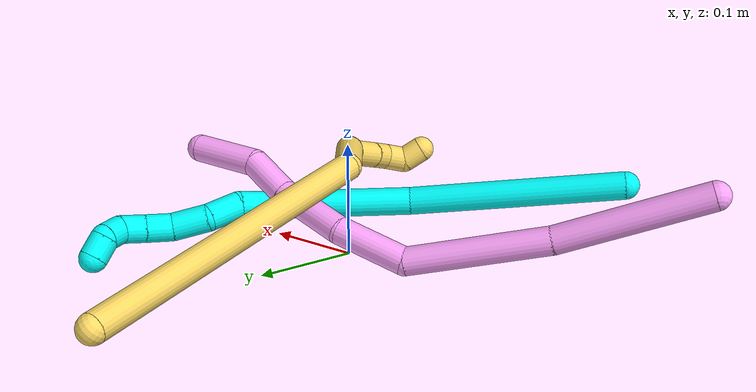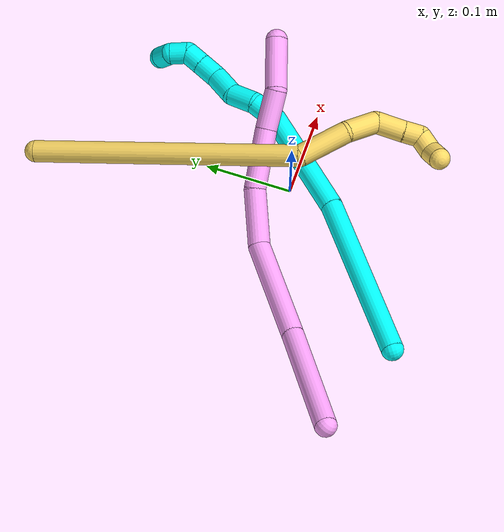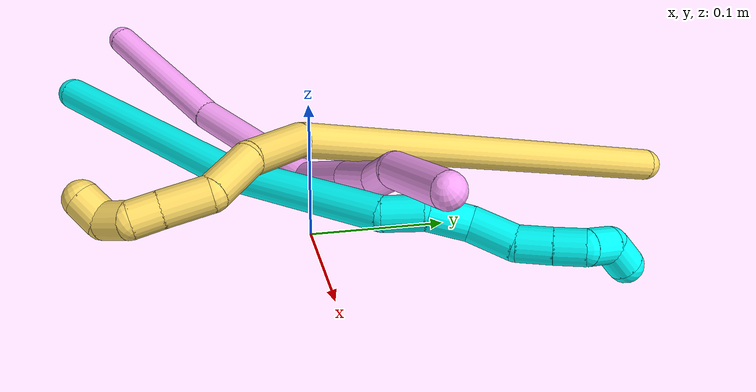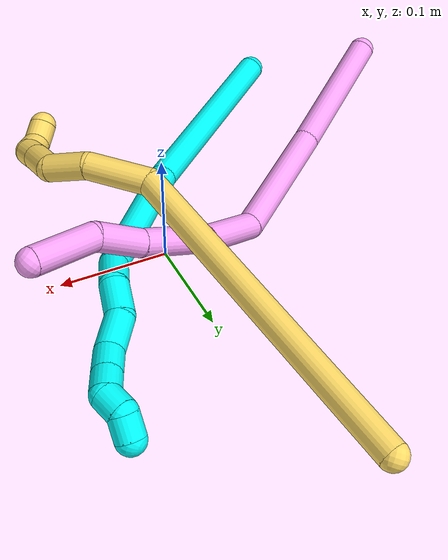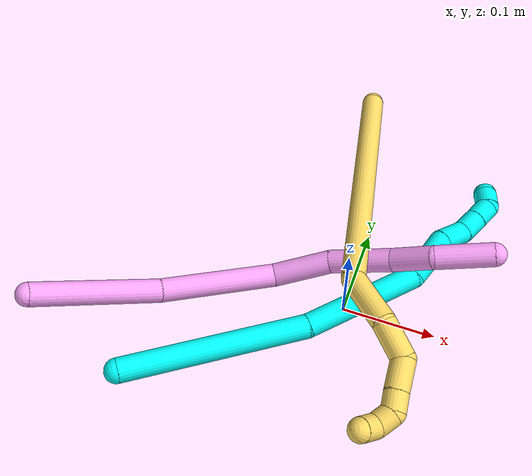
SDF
<sdf version="1.7">
 <world name="default">
  <model name="3">
   <static>0</static>
   <link name="3">
    <collision name="collision-cylinder-e_1_1_4">
     <pose>-0.079002 0.055107 0.008149 -1.42399 -0.956636 0.841457</pose>
     <geometry><cylinder><radius>0.0125</radius><length>0.193334</length></cylinder></geometry>
     <surface>
      <friction><ode><mu>1.16</mu><mu2>1.16</mu2><slip1>0</slip1><slip2>0</slip2></ode></friction>
      <contact><ode><kp>1e+06</kp><kd>1</kd><max_vel>0</max_vel><min_depth>0.001</min_depth></ode></contact>
     </surface>
    </collision>
    <visual name="visual-cylinder-e_1_1_4">
     <pose>-0.079002 0.055107 0.008149 -1.42399 -0.956636 0.841457</pose>
     <geometry><cylinder><radius>0.0125</radius><length>0.193334</length></cylinder></geometry>
     <material><ambient>0.003922 1 0.996078 1</ambient></material>
    </visual>
    <collision name="collision-cylinder-e_2_4_5">
     <pose>-0.204493 0.151308 0.032095 -1.20377 -0.812613 0.574719</pose>
     <geometry><cylinder><radius>0.0125</radius><length>0.128055</length></cylinder></geometry>
     <surface>
      <friction><ode><mu>1.16</mu><mu2>1.16</mu2><slip1>0</slip1><slip2>0</slip2></ode></friction>
      <contact><ode><kp>1e+06</kp><kd>1</kd><max_vel>0</max_vel><min_depth>0.001</min_depth></ode></contact>
     </surface>
    </collision>
    <visual name="visual-cylinder-e_2_4_5">
     <pose>-0.204493 0.151308 0.032095 -1.20377 -0.812613 0.574719</pose>
     <geometry><cylinder><radius>0.0125</radius><length>0.128055</length></cylinder></geometry>
     <material><ambient>0.003922 1 0.996078 1</ambient></material>
    </visual>
    <collision name="collision-cylinder-e_3_5_6">
     <pose>-0.258143 0.202241 0.056267 -0.865766 -0.506078 0.237861</pose>
     <geometry><cylinder><radius>0.0125</radius><length>0.029544</length></cylinder></geometry>
     <surface>
      <friction><ode><mu>1.16</mu><mu2>1.16</mu2><slip1>0</slip1><slip2>0</slip2></ode></friction>
      <contact><ode><kp>1e+06</kp><kd>1</kd><max_vel>0</max_vel><min_depth>0.001</min_depth></ode></contact>
     </surface>
    </collision>
    <visual name="visual-cylinder-e_3_5_6">
     <pose>-0.258143 0.202241 0.056267 -0.865766 -0.506078 0.237861</pose>
     <geometry><cylinder><radius>0.0125</radius><length>0.029544</length></cylinder></geometry>
     <material><ambient>0.003922 1 0.996078 1</ambient></material>
    </visual>
    <collision name="collision-cylinder-e_4_6_7">
     <pose>-0.274776 0.217377 0.075417 -0.456743 -0.667899 0.160929</pose>
     <geometry><cylinder><radius>0.0125</radius><length>0.030588</length></cylinder></geometry>
     <surface>
      <friction><ode><mu>1.16</mu><mu2>1.16</mu2><slip1>0</slip1><slip2>0</slip2></ode></friction>
      <contact><ode><kp>1e+06</kp><kd>1</kd><max_vel>0</max_vel><min_depth>0.001</min_depth></ode></contact>
     </surface>
    </collision>
    <visual name="visual-cylinder-e_4_6_7">
     <pose>-0.274776 0.217377 0.075417 -0.456743 -0.667899 0.160929</pose>
     <geometry><cylinder><radius>0.0125</radius><length>0.030588</length></cylinder></geometry>
     <material><ambient>0.003922 1 0.996078 1</ambient></material>
    </visual>
    <collision name="collision-cylinder-e_5_7_8">
     <pose>-0.297657 0.230152 0.091913 -0.917964 -0.958626 0.502821</pose>
     <geometry><cylinder><radius>0.0125</radius><length>0.032767</length></cylinder></geometry>
     <surface>
      <friction><ode><mu>1.16</mu><mu2>1.16</mu2><slip1>0</slip1><slip2>0</slip2></ode></friction>
      <contact><ode><kp>1e+06</kp><kd>1</kd><max_vel>0</max_vel><min_depth>0.001</min_depth></ode></contact>
     </surface>
    </collision>
    <visual name="visual-cylinder-e_5_7_8">
     <pose>-0.297657 0.230152 0.091913 -0.917964 -0.958626 0.502821</pose>
     <geometry><cylinder><radius>0.0125</radius><length>0.032767</length></cylinder></geometry>
     <material><ambient>0.003922 1 0.996078 1</ambient></material>
    </visual>
    <collision name="collision-cylinder-e_6_8_9">
     <pose>-0.317959 0.245363 0.103821 -0.895744 -0.60806 0.299226</pose>
     <geometry><cylinder><radius>0.0125</radius><length>0.024135</length></cylinder></geometry>
     <surface>
      <friction><ode><mu>1.16</mu><mu2>1.16</mu2><slip1>0</slip1><slip2>0</slip2></ode></friction>
      <contact><ode><kp>1e+06</kp><kd>1</kd><max_vel>0</max_vel><min_depth>0.001</min_depth></ode></contact>
     </surface>
    </collision>
    <visual name="visual-cylinder-e_6_8_9">
     <pose>-0.317959 0.245363 0.103821 -0.895744 -0.60806 0.299226</pose>
     <geometry><cylinder><radius>0.0125</radius><length>0.024135</length></cylinder></geometry>
     <material><ambient>0.003922 1 0.996078 1</ambient></material>
    </visual>
    <collision name="collision-cylinder-e_7_9_10">
     <pose>-0.330698 0.260081 0.115586 -0.897279 -0.579163 0.284917</pose>
     <geometry><cylinder><radius>0.0125</radius><length>0.02136</length></cylinder></geometry>
     <surface>
      <friction><ode><mu>1.16</mu><mu2>1.16</mu2><slip1>0</slip1><slip2>0</slip2></ode></friction>
      <contact><ode><kp>1e+06</kp><kd>1</kd><max_vel>0</max_vel><min_depth>0.001</min_depth></ode></contact>
     </surface>
    </collision>
    <visual name="visual-cylinder-e_7_9_10">
     <pose>-0.330698 0.260081 0.115586 -0.897279 -0.579163 0.284917</pose>
     <geometry><cylinder><radius>0.0125</radius><length>0.02136</length></cylinder></geometry>
     <material><ambient>0.003922 1 0.996078 1</ambient></material>
    </visual>
    <collision name="collision-cylinder-e_8_10_11">
     <pose>-0.338534 0.269038 0.130795 -0.201753 -0.199678 0.020278</pose>
     <geometry><cylinder><radius>0.0125</radius><length>0.020065</length></cylinder></geometry>
     <surface>
      <friction><ode><mu>1.16</mu><mu2>1.16</mu2><slip1>0</slip1><slip2>0</slip2></ode></friction>
      <contact><ode><kp>1e+06</kp><kd>1</kd><max_vel>0</max_vel><min_depth>0.001</min_depth></ode></contact>
     </surface>
    </collision>
    <visual name="visual-cylinder-e_8_10_11">
     <pose>-0.338534 0.269038 0.130795 -0.201753 -0.199678 0.020278</pose>
     <geometry><cylinder><radius>0.0125</radius><length>0.020065</length></cylinder></geometry>
     <material><ambient>0.003922 1 0.996078 1</ambient></material>
    </visual>
    <collision name="collision-cylinder-e_9_11_2">
     <pose>-0.347475 0.267962 0.147056 0.430932 -0.761338 -0.174728</pose>
     <geometry><cylinder><radius>0.0125</radius><length>0.020152</length></cylinder></geometry>
     <surface>
      <friction><ode><mu>1.16</mu><mu2>1.16</mu2><slip1>0</slip1><slip2>0</slip2></ode></friction>
      <contact><ode><kp>1e+06</kp><kd>1</kd><max_vel>0</max_vel><min_depth>0.001</min_depth></ode></contact>
     </surface>
    </collision>
    <visual name="visual-cylinder-e_9_11_2">
     <pose>-0.347475 0.267962 0.147056 0.430932 -0.761338 -0.174728</pose>
     <geometry><cylinder><radius>0.0125</radius><length>0.020152</length></cylinder></geometry>
     <material><ambient>0.003922 1 0.996078 1</ambient></material>
    </visual>
    <collision name="collision-sphere-2">
     <pose>-0.354426 0.264915 0.153683 0 -0 0</pose>
     <geometry><sphere><radius>0.0125</radius></sphere></geometry>
     <surface>
      <friction><ode><mu>1.16</mu><mu2>1.16</mu2><slip1>0</slip1><slip2>0</slip2></ode></friction>
      <contact><ode><kp>1e+06</kp><kd>1</kd><max_vel>0</max_vel><min_depth>0.001</min_depth></ode></contact>
     </surface>
    </collision>
    <visual name="visual-sphere-2">
     <pose>-0.354426 0.264915 0.153683 0 -0 0</pose>
     <geometry><sphere><radius>0.0125</radius></sphere></geometry>
     <material><ambient>0.003922 1 0.996078 1</ambient></material>
    </visual>
    <collision name="collision-sphere-11">
     <pose>-0.340524 0.271009 0.140428 0 -0 0</pose>
     <geometry><sphere><radius>0.0125</radius></sphere></geometry>
     <surface>
      <friction><ode><mu>1.16</mu><mu2>1.16</mu2><slip1>0</slip1><slip2>0</slip2></ode></friction>
      <contact><ode><kp>1e+06</kp><kd>1</kd><max_vel>0</max_vel><min_depth>0.001</min_depth></ode></contact>
     </surface>
    </collision>
    <visual name="visual-sphere-11">
     <pose>-0.340524 0.271009 0.140428 0 -0 0</pose>
     <geometry><sphere><radius>0.0125</radius></sphere></geometry>
     <material><ambient>0.003922 1 0.996078 1</ambient></material>
    </visual>
    <collision name="collision-sphere-10">
     <pose>-0.336544 0.267068 0.121161 0 -0 0</pose>
     <geometry><sphere><radius>0.0125</radius></sphere></geometry>
     <surface>
      <friction><ode><mu>1.16</mu><mu2>1.16</mu2><slip1>0</slip1><slip2>0</slip2></ode></friction>
      <contact><ode><kp>1e+06</kp><kd>1</kd><max_vel>0</max_vel><min_depth>0.001</min_depth></ode></contact>
     </surface>
    </collision>
    <visual name="visual-sphere-10">
     <pose>-0.336544 0.267068 0.121161 0 -0 0</pose>
     <geometry><sphere><radius>0.0125</radius></sphere></geometry>
     <material><ambient>0.003922 1 0.996078 1</ambient></material>
    </visual>
    <collision name="collision-sphere-9">
     <pose>-0.324853 0.253095 0.110011 0 -0 0</pose>
     <geometry><sphere><radius>0.0125</radius></sphere></geometry>
     <surface>
      <friction><ode><mu>1.16</mu><mu2>1.16</mu2><slip1>0</slip1><slip2>0</slip2></ode></friction>
      <contact><ode><kp>1e+06</kp><kd>1</kd><max_vel>0</max_vel><min_depth>0.001</min_depth></ode></contact>
     </surface>
    </collision>
    <visual name="visual-sphere-9">
     <pose>-0.324853 0.253095 0.110011 0 -0 0</pose>
     <geometry><sphere><radius>0.0125</radius></sphere></geometry>
     <material><ambient>0.003922 1 0.996078 1</ambient></material>
    </visual>
    <collision name="collision-sphere-4">
     <pose>-0.158003 0.110215 0.016297 0 -0 0</pose>
     <geometry><sphere><radius>0.0125</radius></sphere></geometry>
     <surface>
      <friction><ode><mu>1.16</mu><mu2>1.16</mu2><slip1>0</slip1><slip2>0</slip2></ode></friction>
      <contact><ode><kp>1e+06</kp><kd>1</kd><max_vel>0</max_vel><min_depth>0.001</min_depth></ode></contact>
     </surface>
    </collision>
    <visual name="visual-sphere-4">
     <pose>-0.158003 0.110215 0.016297 0 -0 0</pose>
     <geometry><sphere><radius>0.0125</radius></sphere></geometry>
     <material><ambient>0.003922 1 0.996078 1</ambient></material>
    </visual>
    <collision name="collision-sphere-1">
     <geometry><sphere><radius>0.0125</radius></sphere></geometry>
     <surface>
      <friction><ode><mu>1.16</mu><mu2>1.16</mu2><slip1>0</slip1><slip2>0</slip2></ode></friction>
      <contact><ode><kp>1e+06</kp><kd>1</kd><max_vel>0</max_vel><min_depth>0.001</min_depth></ode></contact>
     </surface>
    </collision>
    <visual name="visual-sphere-1">
     <geometry><sphere><radius>0.0125</radius></sphere></geometry>
     <material><ambient>0.003922 1 0.996078 1</ambient></material>
    </visual>
    <collision name="collision-sphere-8">
     <pose>-0.311065 0.23763 0.097632 0 -0 0</pose>
     <geometry><sphere><radius>0.0125</radius></sphere></geometry>
     <surface>
      <friction><ode><mu>1.16</mu><mu2>1.16</mu2><slip1>0</slip1><slip2>0</slip2></ode></friction>
      <contact><ode><kp>1e+06</kp><kd>1</kd><max_vel>0</max_vel><min_depth>0.001</min_depth></ode></contact>
     </surface>
    </collision>
    <visual name="visual-sphere-8">
     <pose>-0.311065 0.23763 0.097632 0 -0 0</pose>
     <geometry><sphere><radius>0.0125</radius></sphere></geometry>
     <material><ambient>0.003922 1 0.996078 1</ambient></material>
    </visual>
    <collision name="collision-sphere-5">
     <pose>-0.250982 0.192401 0.047894 0 -0 0</pose>
     <geometry><sphere><radius>0.0125</radius></sphere></geometry>
     <surface>
      <friction><ode><mu>1.16</mu><mu2>1.16</mu2><slip1>0</slip1><slip2>0</slip2></ode></friction>
      <contact><ode><kp>1e+06</kp><kd>1</kd><max_vel>0</max_vel><min_depth>0.001</min_depth></ode></contact>
     </surface>
    </collision>
    <visual name="visual-sphere-5">
     <pose>-0.250982 0.192401 0.047894 0 -0 0</pose>
     <geometry><sphere><radius>0.0125</radius></sphere></geometry>
     <material><ambient>0.003922 1 0.996078 1</ambient></material>
    </visual>
    <collision name="collision-sphere-6">
     <pose>-0.265304 0.212081 0.06464 0 -0 0</pose>
     <geometry><sphere><radius>0.0125</radius></sphere></geometry>
     <surface>
      <friction><ode><mu>1.16</mu><mu2>1.16</mu2><slip1>0</slip1><slip2>0</slip2></ode></friction>
      <contact><ode><kp>1e+06</kp><kd>1</kd><max_vel>0</max_vel><min_depth>0.001</min_depth></ode></contact>
     </surface>
    </collision>
    <visual name="visual-sphere-6">
     <pose>-0.265304 0.212081 0.06464 0 -0 0</pose>
     <geometry><sphere><radius>0.0125</radius></sphere></geometry>
     <material><ambient>0.003922 1 0.996078 1</ambient></material>
    </visual>
    <collision name="collision-sphere-7">
     <pose>-0.284248 0.222673 0.086194 0 -0 0</pose>
     <geometry><sphere><radius>0.0125</radius></sphere></geometry>
     <surface>
      <friction><ode><mu>1.16</mu><mu2>1.16</mu2><slip1>0</slip1><slip2>0</slip2></ode></friction>
      <contact><ode><kp>1e+06</kp><kd>1</kd><max_vel>0</max_vel><min_depth>0.001</min_depth></ode></contact>
     </surface>
    </collision>
    <visual name="visual-sphere-7">
     <pose>-0.284248 0.222673 0.086194 0 -0 0</pose>
     <geometry><sphere><radius>0.0125</radius></sphere></geometry>
     <material><ambient>0.003922 1 0.996078 1</ambient></material>
    </visual>
    <inertial>
     <pose>-0.191555 0.144942 0.046458 0 -0 0</pose>
     <mass>0.5</mass>
     <inertia>
      <ixx>0.000656</ixx>
      <ixy>0</ixy>
      <ixz>0</ixz>
      <iyy>0.000915</iyy>
      <iyz>0</iyz>
      <izz>0.000181</izz>
     </inertia>
    </inertial>
   </link>
   <pose>-0.175905 -0.17248 0.064328 1.79492 -0.689686 -2.69953</pose>
  </model>
  <model name="4">
   <static>0</static>
   <link name="4">
    <collision name="collision-cylinder-e_1_1_4">
     <pose>0.03559 0.057219 -0.002226 -1.60968 0.556096 -0.576967</pose>
     <geometry><cylinder><radius>0.0125</radius><length>0.134841</length></cylinder></geometry>
     <surface>
      <friction><ode><mu>1.16</mu><mu2>1.16</mu2><slip1>0</slip1><slip2>0</slip2></ode></friction>
      <contact><ode><kp>1e+06</kp><kd>1</kd><max_vel>0</max_vel><min_depth>0.001</min_depth></ode></contact>
     </surface>
    </collision>
    <visual name="visual-cylinder-e_1_1_4">
     <pose>0.03559 0.057219 -0.002226 -1.60968 0.556096 -0.576967</pose>
     <geometry><cylinder><radius>0.0125</radius><length>0.134841</length></cylinder></geometry>
     <material><ambient>1 0.65098 0.996078 1</ambient></material>
    </visual>
    <collision name="collision-cylinder-e_2_4_5">
     <pose>0.110459 0.163329 -0.011151 -1.70697 0.672282 -0.761946</pose>
     <geometry><cylinder><radius>0.0125</radius><length>0.126146</length></cylinder></geometry>
     <surface>
      <friction><ode><mu>1.16</mu><mu2>1.16</mu2><slip1>0</slip1><slip2>0</slip2></ode></friction>
      <contact><ode><kp>1e+06</kp><kd>1</kd><max_vel>0</max_vel><min_depth>0.001</min_depth></ode></contact>
     </surface>
    </collision>
    <visual name="visual-cylinder-e_2_4_5">
     <pose>0.110459 0.163329 -0.011151 -1.70697 0.672282 -0.761946</pose>
     <geometry><cylinder><radius>0.0125</radius><length>0.126146</length></cylinder></geometry>
     <material><ambient>1 0.65098 0.996078 1</ambient></material>
    </visual>
    <collision name="collision-cylinder-e_3_5_6">
     <pose>0.170743 0.227748 -0.036775 -2.45449 0.709129 -1.60507</pose>
     <geometry><cylinder><radius>0.0125</radius><length>0.06451</length></cylinder></geometry>
     <surface>
      <friction><ode><mu>1.16</mu><mu2>1.16</mu2><slip1>0</slip1><slip2>0</slip2></ode></friction>
      <contact><ode><kp>1e+06</kp><kd>1</kd><max_vel>0</max_vel><min_depth>0.001</min_depth></ode></contact>
     </surface>
    </collision>
    <visual name="visual-cylinder-e_3_5_6">
     <pose>0.170743 0.227748 -0.036775 -2.45449 0.709129 -1.60507</pose>
     <geometry><cylinder><radius>0.0125</radius><length>0.06451</length></cylinder></geometry>
     <material><ambient>1 0.65098 0.996078 1</ambient></material>
    </visual>
    <collision name="collision-cylinder-e_4_6_7">
     <pose>0.206928 0.260413 -0.081174 -2.54939 0.459211 -1.30751</pose>
     <geometry><cylinder><radius>0.0125</radius><length>0.068501</length></cylinder></geometry>
     <surface>
      <friction><ode><mu>1.16</mu><mu2>1.16</mu2><slip1>0</slip1><slip2>0</slip2></ode></friction>
      <contact><ode><kp>1e+06</kp><kd>1</kd><max_vel>0</max_vel><min_depth>0.001</min_depth></ode></contact>
     </surface>
    </collision>
    <visual name="visual-cylinder-e_4_6_7">
     <pose>0.206928 0.260413 -0.081174 -2.54939 0.459211 -1.30751</pose>
     <geometry><cylinder><radius>0.0125</radius><length>0.068501</length></cylinder></geometry>
     <material><ambient>1 0.65098 0.996078 1</ambient></material>
    </visual>
    <collision name="collision-cylinder-e_5_7_8">
     <pose>0.231424 0.285685 -0.125717 -2.73836 0.422267 -1.61825</pose>
     <geometry><cylinder><radius>0.0125</radius><length>0.045457</length></cylinder></geometry>
     <surface>
      <friction><ode><mu>1.16</mu><mu2>1.16</mu2><slip1>0</slip1><slip2>0</slip2></ode></friction>
      <contact><ode><kp>1e+06</kp><kd>1</kd><max_vel>0</max_vel><min_depth>0.001</min_depth></ode></contact>
     </surface>
    </collision>
    <visual name="visual-cylinder-e_5_7_8">
     <pose>0.231424 0.285685 -0.125717 -2.73836 0.422267 -1.61825</pose>
     <geometry><cylinder><radius>0.0125</radius><length>0.045457</length></cylinder></geometry>
     <material><ambient>1 0.65098 0.996078 1</ambient></material>
    </visual>
    <collision name="collision-cylinder-e_6_8_2">
     <pose>0.256915 0.313743 -0.160844 -2.24916 0.563719 -1.0886</pose>
     <geometry><cylinder><radius>0.0125</radius><length>0.060544</length></cylinder></geometry>
     <surface>
      <friction><ode><mu>1.16</mu><mu2>1.16</mu2><slip1>0</slip1><slip2>0</slip2></ode></friction>
      <contact><ode><kp>1e+06</kp><kd>1</kd><max_vel>0</max_vel><min_depth>0.001</min_depth></ode></contact>
     </surface>
    </collision>
    <visual name="visual-cylinder-e_6_8_2">
     <pose>0.256915 0.313743 -0.160844 -2.24916 0.563719 -1.0886</pose>
     <geometry><cylinder><radius>0.0125</radius><length>0.060544</length></cylinder></geometry>
     <material><ambient>1 0.65098 0.996078 1</ambient></material>
    </visual>
    <collision name="collision-sphere-2">
     <pose>0.27309 0.333666 -0.176901 0 -0 0</pose>
     <geometry><sphere><radius>0.0125</radius></sphere></geometry>
     <surface>
      <friction><ode><mu>1.16</mu><mu2>1.16</mu2><slip1>0</slip1><slip2>0</slip2></ode></friction>
      <contact><ode><kp>1e+06</kp><kd>1</kd><max_vel>0</max_vel><min_depth>0.001</min_depth></ode></contact>
     </surface>
    </collision>
    <visual name="visual-sphere-2">
     <pose>0.27309 0.333666 -0.176901 0 -0 0</pose>
     <geometry><sphere><radius>0.0125</radius></sphere></geometry>
     <material><ambient>1 0.65098 0.996078 1</ambient></material>
    </visual>
    <collision name="collision-sphere-4">
     <pose>0.071179 0.114437 -0.004452 0 -0 0</pose>
     <geometry><sphere><radius>0.0125</radius></sphere></geometry>
     <surface>
      <friction><ode><mu>1.16</mu><mu2>1.16</mu2><slip1>0</slip1><slip2>0</slip2></ode></friction>
      <contact><ode><kp>1e+06</kp><kd>1</kd><max_vel>0</max_vel><min_depth>0.001</min_depth></ode></contact>
     </surface>
    </collision>
    <visual name="visual-sphere-4">
     <pose>0.071179 0.114437 -0.004452 0 -0 0</pose>
     <geometry><sphere><radius>0.0125</radius></sphere></geometry>
     <material><ambient>1 0.65098 0.996078 1</ambient></material>
    </visual>
    <collision name="collision-sphere-1">
     <geometry><sphere><radius>0.0125</radius></sphere></geometry>
     <surface>
      <friction><ode><mu>1.16</mu><mu2>1.16</mu2><slip1>0</slip1><slip2>0</slip2></ode></friction>
      <contact><ode><kp>1e+06</kp><kd>1</kd><max_vel>0</max_vel><min_depth>0.001</min_depth></ode></contact>
     </surface>
    </collision>
    <visual name="visual-sphere-1">
     <geometry><sphere><radius>0.0125</radius></sphere></geometry>
     <material><ambient>1 0.65098 0.996078 1</ambient></material>
    </visual>
    <collision name="collision-sphere-8">
     <pose>0.240739 0.29382 -0.144787 0 -0 0</pose>
     <geometry><sphere><radius>0.0125</radius></sphere></geometry>
     <surface>
      <friction><ode><mu>1.16</mu><mu2>1.16</mu2><slip1>0</slip1><slip2>0</slip2></ode></friction>
      <contact><ode><kp>1e+06</kp><kd>1</kd><max_vel>0</max_vel><min_depth>0.001</min_depth></ode></contact>
     </surface>
    </collision>
    <visual name="visual-sphere-8">
     <pose>0.240739 0.29382 -0.144787 0 -0 0</pose>
     <geometry><sphere><radius>0.0125</radius></sphere></geometry>
     <material><ambient>1 0.65098 0.996078 1</ambient></material>
    </visual>
    <collision name="collision-sphere-5">
     <pose>0.14974 0.21222 -0.01785 0 -0 0</pose>
     <geometry><sphere><radius>0.0125</radius></sphere></geometry>
     <surface>
      <friction><ode><mu>1.16</mu><mu2>1.16</mu2><slip1>0</slip1><slip2>0</slip2></ode></friction>
      <contact><ode><kp>1e+06</kp><kd>1</kd><max_vel>0</max_vel><min_depth>0.001</min_depth></ode></contact>
     </surface>
    </collision>
    <visual name="visual-sphere-5">
     <pose>0.14974 0.21222 -0.01785 0 -0 0</pose>
     <geometry><sphere><radius>0.0125</radius></sphere></geometry>
     <material><ambient>1 0.65098 0.996078 1</ambient></material>
    </visual>
    <collision name="collision-sphere-6">
     <pose>0.191747 0.243275 -0.0557 0 -0 0</pose>
     <geometry><sphere><radius>0.0125</radius></sphere></geometry>
     <surface>
      <friction><ode><mu>1.16</mu><mu2>1.16</mu2><slip1>0</slip1><slip2>0</slip2></ode></friction>
      <contact><ode><kp>1e+06</kp><kd>1</kd><max_vel>0</max_vel><min_depth>0.001</min_depth></ode></contact>
     </surface>
    </collision>
    <visual name="visual-sphere-6">
     <pose>0.191747 0.243275 -0.0557 0 -0 0</pose>
     <geometry><sphere><radius>0.0125</radius></sphere></geometry>
     <material><ambient>1 0.65098 0.996078 1</ambient></material>
    </visual>
    <collision name="collision-sphere-7">
     <pose>0.22211 0.27755 -0.106648 0 -0 0</pose>
     <geometry><sphere><radius>0.0125</radius></sphere></geometry>
     <surface>
      <friction><ode><mu>1.16</mu><mu2>1.16</mu2><slip1>0</slip1><slip2>0</slip2></ode></friction>
      <contact><ode><kp>1e+06</kp><kd>1</kd><max_vel>0</max_vel><min_depth>0.001</min_depth></ode></contact>
     </surface>
    </collision>
    <visual name="visual-sphere-7">
     <pose>0.22211 0.27755 -0.106648 0 -0 0</pose>
     <geometry><sphere><radius>0.0125</radius></sphere></geometry>
     <material><ambient>1 0.65098 0.996078 1</ambient></material>
    </visual>
    <inertial>
     <pose>0.139994 0.185662 -0.050185 0 -0 0</pose>
     <mass>0.5</mass>
     <inertia>
      <ixx>2.3e-05</ixx>
      <ixy>0</ixy>
      <ixz>0</ixz>
      <iyy>-0.000108</iyy>
      <iyz>0</iyz>
      <izz>-0.000631</izz>
     </inertia>
    </inertial>
   </link>
   <pose>-0.288503 -0.132807 0.0797 -2.38468 -0.377521 1.3276</pose>
  </model>
  <model name="5">
   <static>0</static>
   <link name="5">
    <collision name="collision-cylinder-e_1_1_4">
     <pose>0.059448 -0.123249 -0.071452 2.09618 0.395318 0.669072</pose>
     <geometry><cylinder><radius>0.0125</radius><length>0.308738</length></cylinder></geometry>
     <surface>
      <friction><ode><mu>1.16</mu><mu2>1.16</mu2><slip1>0</slip1><slip2>0</slip2></ode></friction>
      <contact><ode><kp>1e+06</kp><kd>1</kd><max_vel>0</max_vel><min_depth>0.001</min_depth></ode></contact>
     </surface>
    </collision>
    <visual name="visual-cylinder-e_1_1_4">
     <pose>0.059448 -0.123249 -0.071452 2.09618 0.395318 0.669072</pose>
     <geometry><cylinder><radius>0.0125</radius><length>0.308738</length></cylinder></geometry>
     <material><ambient>1 0.858824 0.4 1</ambient></material>
    </visual>
    <collision name="collision-cylinder-e_2_4_5">
     <pose>0.122001 -0.275572 -0.141597 1.5259 0.106306 0.101646</pose>
     <geometry><cylinder><radius>0.0125</radius><length>0.058537</length></cylinder></geometry>
     <surface>
      <friction><ode><mu>1.16</mu><mu2>1.16</mu2><slip1>0</slip1><slip2>0</slip2></ode></friction>
      <contact><ode><kp>1e+06</kp><kd>1</kd><max_vel>0</max_vel><min_depth>0.001</min_depth></ode></contact>
     </surface>
    </collision>
    <visual name="visual-cylinder-e_2_4_5">
     <pose>0.122001 -0.275572 -0.141597 1.5259 0.106306 0.101646</pose>
     <geometry><cylinder><radius>0.0125</radius><length>0.058537</length></cylinder></geometry>
     <material><ambient>1 0.858824 0.4 1</ambient></material>
    </visual>
    <collision name="collision-cylinder-e_3_5_6">
     <pose>0.1318 -0.322241 -0.134598 1.25787 0.347309 0.25386</pose>
     <geometry><cylinder><radius>0.0125</radius><length>0.039333</length></cylinder></geometry>
     <surface>
      <friction><ode><mu>1.16</mu><mu2>1.16</mu2><slip1>0</slip1><slip2>0</slip2></ode></friction>
      <contact><ode><kp>1e+06</kp><kd>1</kd><max_vel>0</max_vel><min_depth>0.001</min_depth></ode></contact>
     </surface>
    </collision>
    <visual name="visual-cylinder-e_3_5_6">
     <pose>0.1318 -0.322241 -0.134598 1.25787 0.347309 0.25386</pose>
     <geometry><cylinder><radius>0.0125</radius><length>0.039333</length></cylinder></geometry>
     <material><ambient>1 0.858824 0.4 1</ambient></material>
    </visual>
    <collision name="collision-cylinder-e_4_6_7">
     <pose>0.150399 -0.350287 -0.132763 1.9243 0.818483 1.11341</pose>
     <geometry><cylinder><radius>0.0125</radius><length>0.03261</length></cylinder></geometry>
     <surface>
      <friction><ode><mu>1.16</mu><mu2>1.16</mu2><slip1>0</slip1><slip2>0</slip2></ode></friction>
      <contact><ode><kp>1e+06</kp><kd>1</kd><max_vel>0</max_vel><min_depth>0.001</min_depth></ode></contact>
     </surface>
    </collision>
    <visual name="visual-cylinder-e_4_6_7">
     <pose>0.150399 -0.350287 -0.132763 1.9243 0.818483 1.11341</pose>
     <geometry><cylinder><radius>0.0125</radius><length>0.03261</length></cylinder></geometry>
     <material><ambient>1 0.858824 0.4 1</ambient></material>
    </visual>
    <collision name="collision-cylinder-e_5_7_8">
     <pose>0.169459 -0.367459 -0.138661 1.86575 0.794845 1.03044</pose>
     <geometry><cylinder><radius>0.0125</radius><length>0.020052</length></cylinder></geometry>
     <surface>
      <friction><ode><mu>1.16</mu><mu2>1.16</mu2><slip1>0</slip1><slip2>0</slip2></ode></friction>
      <contact><ode><kp>1e+06</kp><kd>1</kd><max_vel>0</max_vel><min_depth>0.001</min_depth></ode></contact>
     </surface>
    </collision>
    <visual name="visual-cylinder-e_5_7_8">
     <pose>0.169459 -0.367459 -0.138661 1.86575 0.794845 1.03044</pose>
     <geometry><cylinder><radius>0.0125</radius><length>0.020052</length></cylinder></geometry>
     <material><ambient>1 0.858824 0.4 1</ambient></material>
    </visual>
    <collision name="collision-cylinder-e_6_8_9">
     <pose>0.185238 -0.374495 -0.146163 3.08369 1.00549 3.03636</pose>
     <geometry><cylinder><radius>0.0125</radius><length>0.020422</length></cylinder></geometry>
     <surface>
      <friction><ode><mu>1.16</mu><mu2>1.16</mu2><slip1>0</slip1><slip2>0</slip2></ode></friction>
      <contact><ode><kp>1e+06</kp><kd>1</kd><max_vel>0</max_vel><min_depth>0.001</min_depth></ode></contact>
     </surface>
    </collision>
    <visual name="visual-cylinder-e_6_8_9">
     <pose>0.185238 -0.374495 -0.146163 3.08369 1.00549 3.03636</pose>
     <geometry><cylinder><radius>0.0125</radius><length>0.020422</length></cylinder></geometry>
     <material><ambient>1 0.858824 0.4 1</ambient></material>
    </visual>
    <collision name="collision-cylinder-e_7_9_2">
     <pose>0.19625 -0.375793 -0.161444 3.04199 0.237587 2.35045</pose>
     <geometry><cylinder><radius>0.0125</radius><length>0.020308</length></cylinder></geometry>
     <surface>
      <friction><ode><mu>1.16</mu><mu2>1.16</mu2><slip1>0</slip1><slip2>0</slip2></ode></friction>
      <contact><ode><kp>1e+06</kp><kd>1</kd><max_vel>0</max_vel><min_depth>0.001</min_depth></ode></contact>
     </surface>
    </collision>
    <visual name="visual-cylinder-e_7_9_2">
     <pose>0.19625 -0.375793 -0.161444 3.04199 0.237587 2.35045</pose>
     <geometry><cylinder><radius>0.0125</radius><length>0.020308</length></cylinder></geometry>
     <material><ambient>1 0.858824 0.4 1</ambient></material>
    </visual>
    <collision name="collision-sphere-2">
     <pose>0.19864 -0.376774 -0.171264 0 -0 0</pose>
     <geometry><sphere><radius>0.0125</radius></sphere></geometry>
     <surface>
      <friction><ode><mu>1.16</mu><mu2>1.16</mu2><slip1>0</slip1><slip2>0</slip2></ode></friction>
      <contact><ode><kp>1e+06</kp><kd>1</kd><max_vel>0</max_vel><min_depth>0.001</min_depth></ode></contact>
     </surface>
    </collision>
    <visual name="visual-sphere-2">
     <pose>0.19864 -0.376774 -0.171264 0 -0 0</pose>
     <geometry><sphere><radius>0.0125</radius></sphere></geometry>
     <material><ambient>1 0.858824 0.4 1</ambient></material>
    </visual>
    <collision name="collision-sphere-9">
     <pose>0.19386 -0.374811 -0.151623 0 -0 0</pose>
     <geometry><sphere><radius>0.0125</radius></sphere></geometry>
     <surface>
      <friction><ode><mu>1.16</mu><mu2>1.16</mu2><slip1>0</slip1><slip2>0</slip2></ode></friction>
      <contact><ode><kp>1e+06</kp><kd>1</kd><max_vel>0</max_vel><min_depth>0.001</min_depth></ode></contact>
     </surface>
    </collision>
    <visual name="visual-sphere-9">
     <pose>0.19386 -0.374811 -0.151623 0 -0 0</pose>
     <geometry><sphere><radius>0.0125</radius></sphere></geometry>
     <material><ambient>1 0.858824 0.4 1</ambient></material>
    </visual>
    <collision name="collision-sphere-4">
     <pose>0.118895 -0.246498 -0.142903 0 -0 0</pose>
     <geometry><sphere><radius>0.0125</radius></sphere></geometry>
     <surface>
      <friction><ode><mu>1.16</mu><mu2>1.16</mu2><slip1>0</slip1><slip2>0</slip2></ode></friction>
      <contact><ode><kp>1e+06</kp><kd>1</kd><max_vel>0</max_vel><min_depth>0.001</min_depth></ode></contact>
     </surface>
    </collision>
    <visual name="visual-sphere-4">
     <pose>0.118895 -0.246498 -0.142903 0 -0 0</pose>
     <geometry><sphere><radius>0.0125</radius></sphere></geometry>
     <material><ambient>1 0.858824 0.4 1</ambient></material>
    </visual>
    <collision name="collision-sphere-1">
     <geometry><sphere><radius>0.0125</radius></sphere></geometry>
     <surface>
      <friction><ode><mu>1.16</mu><mu2>1.16</mu2><slip1>0</slip1><slip2>0</slip2></ode></friction>
      <contact><ode><kp>1e+06</kp><kd>1</kd><max_vel>0</max_vel><min_depth>0.001</min_depth></ode></contact>
     </surface>
    </collision>
    <visual name="visual-sphere-1">
     <geometry><sphere><radius>0.0125</radius></sphere></geometry>
     <material><ambient>1 0.858824 0.4 1</ambient></material>
    </visual>
    <collision name="collision-sphere-8">
     <pose>0.176616 -0.374178 -0.140702 0 -0 0</pose>
     <geometry><sphere><radius>0.0125</radius></sphere></geometry>
     <surface>
      <friction><ode><mu>1.16</mu><mu2>1.16</mu2><slip1>0</slip1><slip2>0</slip2></ode></friction>
      <contact><ode><kp>1e+06</kp><kd>1</kd><max_vel>0</max_vel><min_depth>0.001</min_depth></ode></contact>
     </surface>
    </collision>
    <visual name="visual-sphere-8">
     <pose>0.176616 -0.374178 -0.140702 0 -0 0</pose>
     <geometry><sphere><radius>0.0125</radius></sphere></geometry>
     <material><ambient>1 0.858824 0.4 1</ambient></material>
    </visual>
    <collision name="collision-sphere-5">
     <pose>0.125107 -0.304646 -0.140291 0 -0 0</pose>
     <geometry><sphere><radius>0.0125</radius></sphere></geometry>
     <surface>
      <friction><ode><mu>1.16</mu><mu2>1.16</mu2><slip1>0</slip1><slip2>0</slip2></ode></friction>
      <contact><ode><kp>1e+06</kp><kd>1</kd><max_vel>0</max_vel><min_depth>0.001</min_depth></ode></contact>
     </surface>
    </collision>
    <visual name="visual-sphere-5">
     <pose>0.125107 -0.304646 -0.140291 0 -0 0</pose>
     <geometry><sphere><radius>0.0125</radius></sphere></geometry>
     <material><ambient>1 0.858824 0.4 1</ambient></material>
    </visual>
    <collision name="collision-sphere-6">
     <pose>0.138494 -0.339835 -0.128906 0 -0 0</pose>
     <geometry><sphere><radius>0.0125</radius></sphere></geometry>
     <surface>
      <friction><ode><mu>1.16</mu><mu2>1.16</mu2><slip1>0</slip1><slip2>0</slip2></ode></friction>
      <contact><ode><kp>1e+06</kp><kd>1</kd><max_vel>0</max_vel><min_depth>0.001</min_depth></ode></contact>
     </surface>
    </collision>
    <visual name="visual-sphere-6">
     <pose>0.138494 -0.339835 -0.128906 0 -0 0</pose>
     <geometry><sphere><radius>0.0125</radius></sphere></geometry>
     <material><ambient>1 0.858824 0.4 1</ambient></material>
    </visual>
    <collision name="collision-sphere-7">
     <pose>0.162303 -0.36074 -0.13662 0 -0 0</pose>
     <geometry><sphere><radius>0.0125</radius></sphere></geometry>
     <surface>
      <friction><ode><mu>1.16</mu><mu2>1.16</mu2><slip1>0</slip1><slip2>0</slip2></ode></friction>
      <contact><ode><kp>1e+06</kp><kd>1</kd><max_vel>0</max_vel><min_depth>0.001</min_depth></ode></contact>
     </surface>
    </collision>
    <visual name="visual-sphere-7">
     <pose>0.162303 -0.36074 -0.13662 0 -0 0</pose>
     <geometry><sphere><radius>0.0125</radius></sphere></geometry>
     <material><ambient>1 0.858824 0.4 1</ambient></material>
    </visual>
    <inertial>
     <pose>0.093501 -0.201857 -0.098032 0 -0 0</pose>
     <mass>0.5</mass>
     <inertia>
      <ixx>0.003243</ixx>
      <ixy>0</ixy>
      <ixz>0</ixz>
      <iyy>0.000938</iyy>
      <iyz>0</iyz>
      <izz>0.001024</izz>
     </inertia>
    </inertial>
   </link>
   <pose>-0.049978 0.288508 0.012383 -2.87239 0.759709 -2.09948</pose>
  </model>
 </world>
</sdf>
